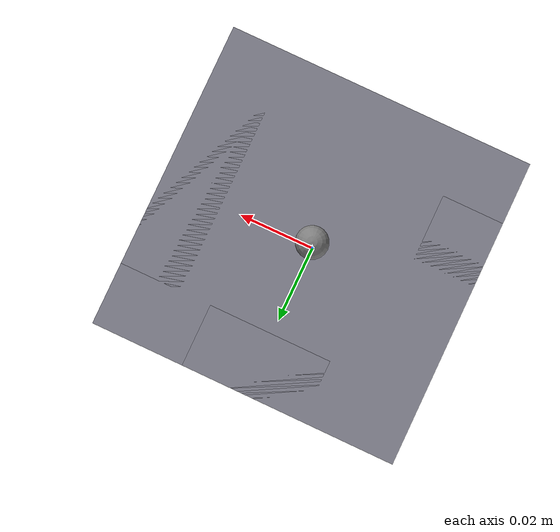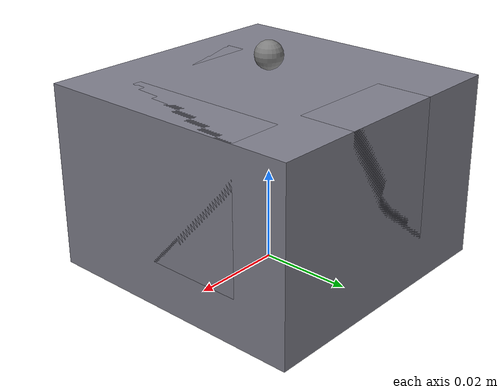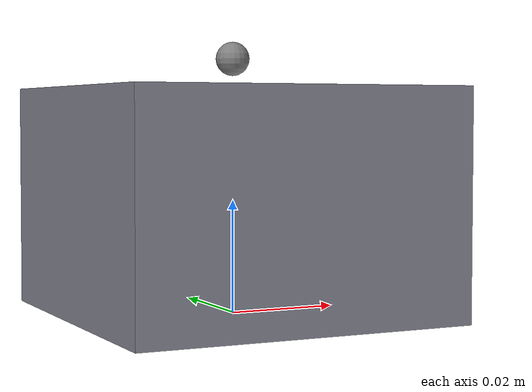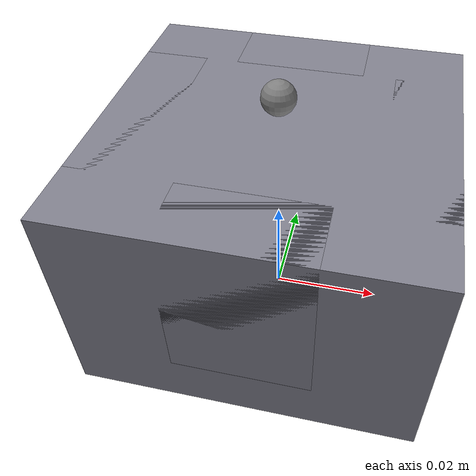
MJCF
<!--
  带凹槽块 MJCF — Peg-in-Slot 任务的 slot
  主体方块 0.06m x 0.06m x 0.04m
  中心凹槽: 0.018m 宽, 0.025m 深, 沿 z 轴
  灰色
-->
<mujoco model="slot_block">
  <compiler angle="radian"/>
  <worldbody>
    <body name="slot_block" pos="0 0 0.02">
      <freejoint name="slot_block_joint"/>
      <inertial mass="0.1" diaginertia="5e-5 5e-5 5e-5" pos="0 0 0"/>
      <!-- 主体方块 -->
      <geom name="slot_base" type="box" size="0.03 0.03 0.02" pos="0 0 0" rgba="0.5 0.5 0.55 1" friction="0.7 0.5 0.3"/>
      <!-- 凹槽四周壁 (用 4 个长方体围出中心孔) -->
      <!-- 上壁 (y+) -->
      <geom name="slot_wall_top" type="box" size="0.012 0.006 0.015" pos="0 0.024 0.005" rgba="0.5 0.5 0.55 1" friction="0.7 0.5 0.3"/>
      <!-- 下壁 (y-) -->
      <geom name="slot_wall_bottom" type="box" size="0.012 0.006 0.015" pos="0 -0.024 0.005" rgba="0.5 0.5 0.55 1" friction="0.7 0.5 0.3"/>
      <!-- 左壁 (x-) -->
      <geom name="slot_wall_left" type="box" size="0.006 0.018 0.015" pos="-0.024 0 0.005" rgba="0.5 0.5 0.55 1" friction="0.7 0.5 0.3"/>
      <!-- 右壁 (x+) -->
      <geom name="slot_wall_right" type="box" size="0.006 0.018 0.015" pos="0.024 0 0.005" rgba="0.5 0.5 0.55 1" friction="0.7 0.5 0.3"/>

      <!-- 槽底 site (凹槽底部中心) -->
      <site name="slot_bottom" pos="0 0 -0.005" size="0.003"/>
      <!-- 槽口 site (凹槽顶部中心) -->
      <site name="slot_top" pos="0 0 0.025" size="0.003"/>
      <site name="slot_center" pos="0 0 0.01" size="0.005"/>
    </body>
  </worldbody>
</mujoco>
